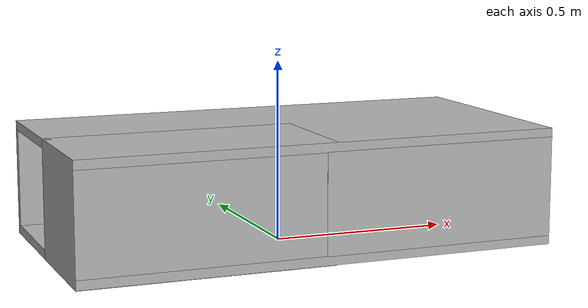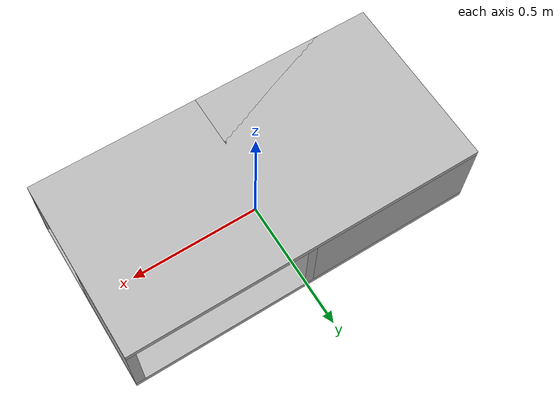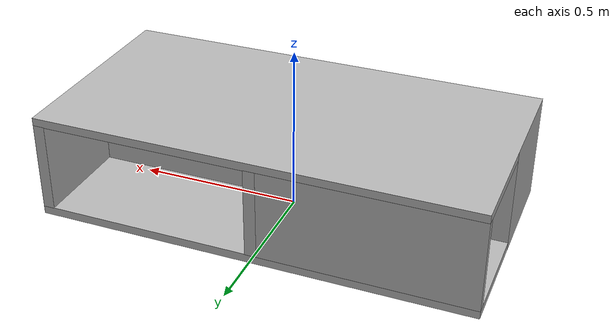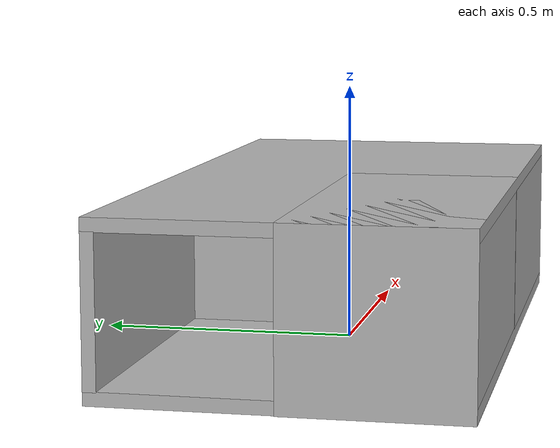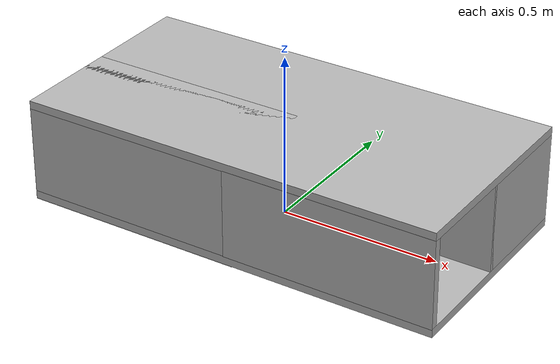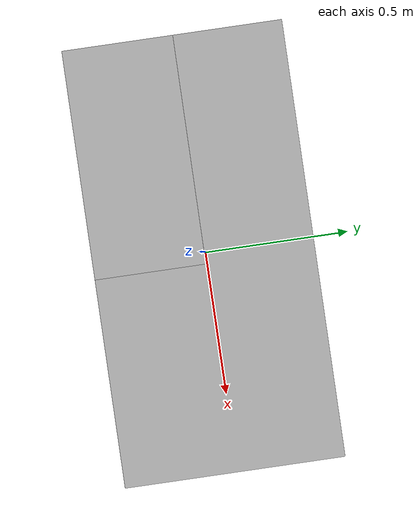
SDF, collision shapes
<?xml version="1.0" ?>
<sdf version="1.6">
  <model name="aws_robomaker_residential_CoffeeTable_01">
    <link name="link">
      <inertial>
        <mass>21.7</mass>

        <inertia>
          <ixx>0.8137499999999998</ixx>
          <ixy>0</ixy>
          <ixz>0</ixz>
          <iyy>2.76675</iyy>
          <iyz>0</iyz>
          <izz>3.254</izz>
        </inertia>

      </inertial>
      <collision name="aws_coffeetable_01_collision_collider_box">
        <pose>-0.309667 -0.161007 0.161882 0.0 -0.0 0.0</pose>
        <geometry>
          <box>
            <size>0.694767 0.33706 0.323764</size>
          </box>
        </geometry>
      </collision>
      <collision name="aws_coffeetable_01_collision_collider_box.001">
        <pose>0.006415 0.004546 0.311061 0.0 -0.0 0.0</pose>
        <geometry>
          <box>
            <size>1.32693 0.668167 0.025406</size>
          </box>
        </geometry>
      </collision>
      <collision name="aws_coffeetable_01_collision_collider_box.002">
        <pose>0.006415 0.004546 0.013783 0.0 -0.0 0.0</pose>
        <geometry>
          <box>
            <size>1.32693 0.668167 0.025406</size>
          </box>
        </geometry>
      </collision>
      <collision name="aws_coffeetable_01_collision_collider_box.003">
        <pose>0.338478 -0.318621 0.162405 0.0 -0.0 0.0</pose>
        <geometry>
          <box>
            <size>0.662802 0.022593 0.274656</size>
          </box>
        </geometry>
      </collision>
      <collision name="aws_coffeetable_01_collision_collider_box.004">
        <pose>0.338478 0.008093 0.162405 0.0 -0.0 0.0</pose>
        <geometry>
          <box>
            <size>0.662802 0.018158 0.274656</size>
          </box>
        </geometry>
      </collision>
      <collision name="aws_coffeetable_01_collision_collider_box.005">
        <pose>0.652256 0.168856 0.162405 0.0 -0.0 0.0</pose>
        <geometry>
          <box>
            <size>0.035246 0.339683 0.274656</size>
          </box>
        </geometry>
      </collision>
      <collision name="aws_coffeetable_01_collision_collider_box.006">
        <pose>-0.004561 0.168856 0.162405 0.0 -0.0 0.0</pose>
        <geometry>
          <box>
            <size>0.035246 0.339683 0.274656</size>
          </box>
        </geometry>
      </collision>
      <collision name="aws_coffeetable_01_collision_collider_box.007">
        <pose>-0.325673 0.326292 0.162405 0.0 -0.0 0.0</pose>
        <geometry>
          <box>
            <size>0.662802 0.024731 0.274656</size>
          </box>
        </geometry>
      </collision>
      <collision name="collision">
        <!-- Maintained surface properties from previous collision -->
        <surface>
          <contact>
            <ode>
              <max_vel>0.01</max_vel>
            </ode>
          </contact>
         </surface>
      </collision>

      <visual name="visual">
	    <geometry>
          <mesh>
            <uri>model://aws_robomaker_residential_CoffeeTable_01/meshes/aws_CoffeeTable_01_visual.DAE</uri>
          </mesh>
        </geometry>
      <meta> <layer> 1 </layer></meta>
</visual>
    </link>
    <static>1</static>
  </model>
</sdf>
